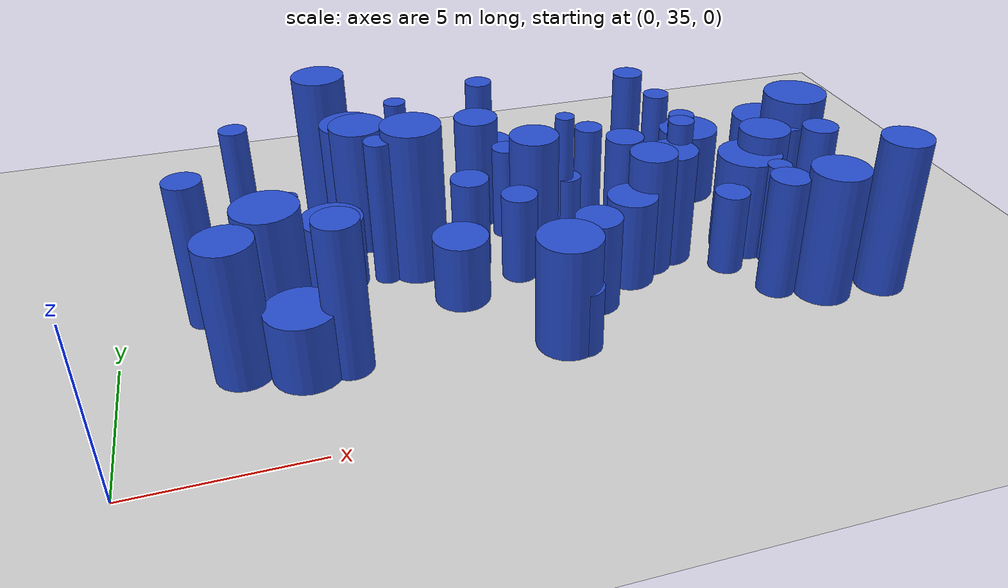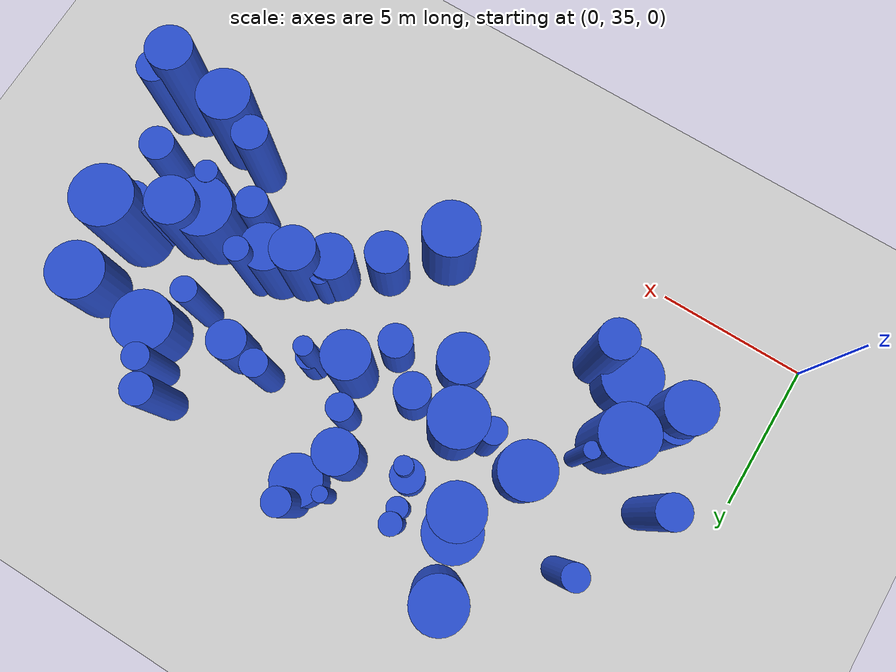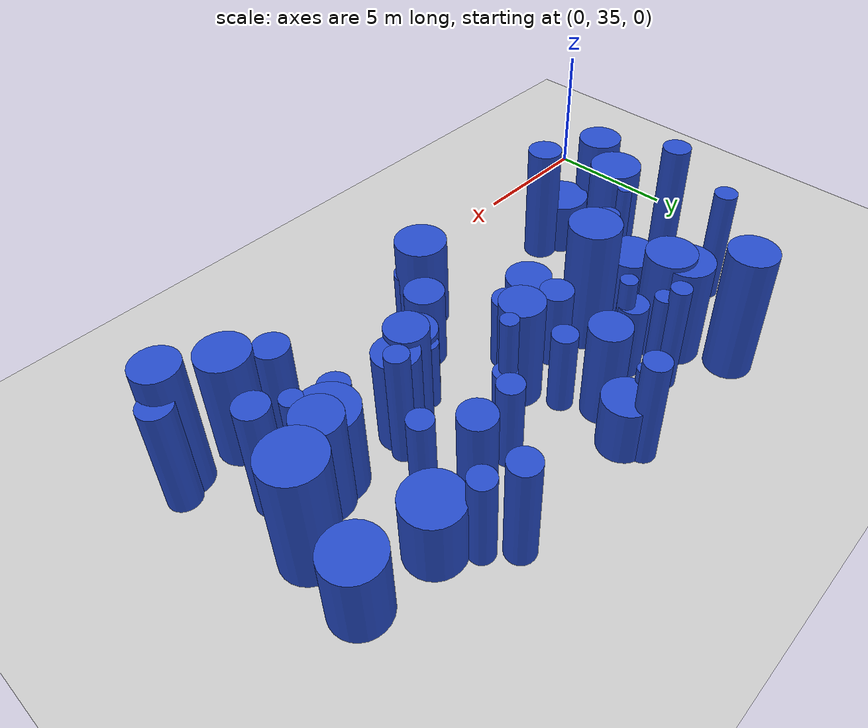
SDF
<sdf version="1.6">
 <world name="default">
  <model name="ground_plane">
   <static>1</static>
   <link name="link">
    <collision name="collision">
     <geometry><plane><normal>0 0 1</normal><size>100 100</size></plane></geometry>
     <surface><friction><ode><mu>100</mu><mu2>50</mu2></ode></friction></surface>
    </collision>
    <visual name="visual">
     <cast_shadows>0</cast_shadows>
     <geometry><plane><normal>0 0 1</normal><size>100 100</size></plane></geometry>
     <material>
      <script><uri>file://media/materials/scripts/gazebo.material</uri><name>Gazebo/Grey</name></script>
     </material>
    </visual>
   </link>
  </model>
  <model name="3">
   <static>0</static>
   <link name="link">
    <inertial>
     <mass>2</mass>
     <inertia><ixx>1.27106</ixx><ixy>0</ixy><ixz>0</ixz><iyy>1.27106</iyy><iyz>0</iyz><izz>0.895913</izz></inertia>
    </inertial>
    <collision name="collision">
     <geometry><cylinder><length>2.2223</length><radius>0.946527</radius></cylinder></geometry>
     <surface><contact><collide_without_contact>1</collide_without_contact></contact></surface>
    </collision>
    <visual name="visual">
     <geometry><cylinder><length>2.2223</length><radius>0.946527</radius></cylinder></geometry>
     <material>
      <script><uri>file://media/materials/scripts/gazebo.material</uri><name>Gazebo/Blue</name></script>
     </material>
    </visual>
    <gravity>0</gravity>
   </link>
   <pose>6.2225 42.677 1.11115 0 -0 0</pose>
  </model>
  <model name="13">
   <static>0</static>
   <link name="link">
    <inertial>
     <mass>2</mass>
     <inertia><ixx>1.65318</ixx><ixy>0</ixy><ixz>0</ixz><iyy>1.65318</iyy><iyz>0</iyz><izz>0.578017</izz></inertia>
    </inertial>
    <collision name="collision">
     <geometry><cylinder><length>2.86095</length><radius>0.760275</radius></cylinder></geometry>
     <surface><contact><collide_without_contact>1</collide_without_contact></contact></surface>
    </collision>
    <visual name="visual">
     <geometry><cylinder><length>2.86095</length><radius>0.760275</radius></cylinder></geometry>
     <material>
      <script><uri>file://media/materials/scripts/gazebo.material</uri><name>Gazebo/Blue</name></script>
     </material>
    </visual>
    <gravity>0</gravity>
   </link>
   <pose>14.8082 40.254 1.43047 0 -0 0</pose>
  </model>
  <model name="49">
   <static>0</static>
   <link name="link">
    <inertial>
     <mass>2</mass>
     <inertia><ixx>2.53938</ixx><ixy>0</ixy><ixz>0</ixz><iyy>2.53938</iyy><iyz>0</iyz><izz>0.580052</izz></inertia>
    </inertial>
    <collision name="collision">
     <geometry><cylinder><length>3.67371</length><radius>0.761611</radius></cylinder></geometry>
     <surface><contact><collide_without_contact>1</collide_without_contact></contact></surface>
    </collision>
    <visual name="visual">
     <geometry><cylinder><length>3.67371</length><radius>0.761611</radius></cylinder></geometry>
     <material>
      <script><uri>file://media/materials/scripts/gazebo.material</uri><name>Gazebo/Blue</name></script>
     </material>
    </visual>
    <gravity>0</gravity>
   </link>
   <pose>16.4595 41.1875 1.83685 0 -0 0</pose>
  </model>
  <model name="63">
   <static>0</static>
   <link name="link">
    <inertial>
     <mass>2</mass>
     <inertia><ixx>3.63749</ixx><ixy>0</ixy><ixz>0</ixz><iyy>3.63749</iyy><iyz>0</iyz><izz>0.165125</izz></inertia>
    </inertial>
    <collision name="collision">
     <geometry><cylinder><length>4.61839</length><radius>0.406356</radius></cylinder></geometry>
     <surface><contact><collide_without_contact>1</collide_without_contact></contact></surface>
    </collision>
    <visual name="visual">
     <geometry><cylinder><length>4.61839</length><radius>0.406356</radius></cylinder></geometry>
     <material>
      <script><uri>file://media/materials/scripts/gazebo.material</uri><name>Gazebo/Blue</name></script>
     </material>
    </visual>
    <gravity>0</gravity>
   </link>
   <pose>7.74254 42.4668 2.3092 0 -0 0</pose>
  </model>
  <model name="65">
   <static>0</static>
   <link name="link">
    <inertial>
     <mass>2</mass>
     <inertia><ixx>2.6533</ixx><ixy>0</ixy><ixz>0</ixz><iyy>2.6533</iyy><iyz>0</iyz><izz>0.0866099</izz></inertia>
    </inertial>
    <collision name="collision">
     <geometry><cylinder><length>3.95727</length><radius>0.294296</radius></cylinder></geometry>
     <surface><contact><collide_without_contact>1</collide_without_contact></contact></surface>
    </collision>
    <visual name="visual">
     <geometry><cylinder><length>3.95727</length><radius>0.294296</radius></cylinder></geometry>
     <material>
      <script><uri>file://media/materials/scripts/gazebo.material</uri><name>Gazebo/Blue</name></script>
     </material>
    </visual>
    <gravity>0</gravity>
   </link>
   <pose>9.41371 44.5715 1.97863 0 -0 0</pose>
  </model>
  <model name="69">
   <static>0</static>
   <link name="link">
    <inertial>
     <mass>2</mass>
     <inertia><ixx>4.29036</ixx><ixy>0</ixy><ixz>0</ixz><iyy>4.29036</iyy><iyz>0</iyz><izz>0.556457</izz></inertia>
    </inertial>
    <collision name="collision">
     <geometry><cylinder><length>4.9064</length><radius>0.74596</radius></cylinder></geometry>
     <surface><contact><collide_without_contact>1</collide_without_contact></contact></surface>
    </collision>
    <visual name="visual">
     <geometry><cylinder><length>4.9064</length><radius>0.74596</radius></cylinder></geometry>
     <material>
      <script><uri>file://media/materials/scripts/gazebo.material</uri><name>Gazebo/Blue</name></script>
     </material>
    </visual>
    <gravity>0</gravity>
   </link>
   <pose>21.9801 37.6707 2.4532 0 -0 0</pose>
  </model>
  <model name="73">
   <static>0</static>
   <link name="link">
    <inertial>
     <mass>2</mass>
     <inertia><ixx>3.46252</ixx><ixy>0</ixy><ixz>0</ixz><iyy>3.46252</iyy><iyz>0</iyz><izz>0.167868</izz></inertia>
    </inertial>
    <collision name="collision">
     <geometry><cylinder><length>4.50239</length><radius>0.409717</radius></cylinder></geometry>
     <surface><contact><collide_without_contact>1</collide_without_contact></contact></surface>
    </collision>
    <visual name="visual">
     <geometry><cylinder><length>4.50239</length><radius>0.409717</radius></cylinder></geometry>
     <material>
      <script><uri>file://media/materials/scripts/gazebo.material</uri><name>Gazebo/Blue</name></script>
     </material>
    </visual>
    <gravity>0</gravity>
   </link>
   <pose>3.82424 44.7196 2.25119 0 -0 0</pose>
  </model>
  <model name="81">
   <static>0</static>
   <link name="link">
    <inertial>
     <mass>2</mass>
     <inertia><ixx>3.20515</ixx><ixy>0</ixy><ixz>0</ixz><iyy>3.20515</iyy><iyz>0</iyz><izz>0.736814</izz></inertia>
    </inertial>
    <collision name="collision">
     <geometry><cylinder><length>4.12559</length><radius>0.858379</radius></cylinder></geometry>
     <surface><contact><collide_without_contact>1</collide_without_contact></contact></surface>
    </collision>
    <visual name="visual">
     <geometry><cylinder><length>4.12559</length><radius>0.858379</radius></cylinder></geometry>
     <material>
      <script><uri>file://media/materials/scripts/gazebo.material</uri><name>Gazebo/Blue</name></script>
     </material>
    </visual>
    <gravity>0</gravity>
   </link>
   <pose>20.1003 37.8413 2.06279 0 -0 0</pose>
  </model>
  <model name="103">
   <static>0</static>
   <link name="link">
    <inertial>
     <mass>2</mass>
     <inertia><ixx>1.67193</ixx><ixy>0</ixy><ixz>0</ixz><iyy>1.67193</iyy><iyz>0</iyz><izz>0.920377</izz></inertia>
    </inertial>
    <collision name="collision">
     <geometry><cylinder><length>2.69637</length><radius>0.959363</radius></cylinder></geometry>
     <surface><contact><collide_without_contact>1</collide_without_contact></contact></surface>
    </collision>
    <visual name="visual">
     <geometry><cylinder><length>2.69637</length><radius>0.959363</radius></cylinder></geometry>
     <material>
      <script><uri>file://media/materials/scripts/gazebo.material</uri><name>Gazebo/Blue</name></script>
     </material>
    </visual>
    <gravity>0</gravity>
   </link>
   <pose>21.392 44.72 1.34819 0 -0 0</pose>
  </model>
  <model name="112">
   <static>0</static>
   <link name="link">
    <inertial>
     <mass>2</mass>
     <inertia><ixx>2.52955</ixx><ixy>0</ixy><ixz>0</ixz><iyy>2.52955</iyy><iyz>0</iyz><izz>0.495649</izz></inertia>
    </inertial>
    <collision name="collision">
     <geometry><cylinder><length>3.70005</length><radius>0.704024</radius></cylinder></geometry>
     <surface><contact><collide_without_contact>1</collide_without_contact></contact></surface>
    </collision>
    <visual name="visual">
     <geometry><cylinder><length>3.70005</length><radius>0.704024</radius></cylinder></geometry>
     <material>
      <script><uri>file://media/materials/scripts/gazebo.material</uri><name>Gazebo/Blue</name></script>
     </material>
    </visual>
    <gravity>0</gravity>
   </link>
   <pose>11.3212 45.2536 1.85003 0 -0 0</pose>
  </model>
  <model name="115">
   <static>0</static>
   <link name="link">
    <inertial>
     <mass>2</mass>
     <inertia>
      <ixx>2.45331</ixx>
      <ixy>0</ixy>
      <ixz>0</ixz>
      <iyy>2.45331</iyy>
      <iyz>0</iyz>
      <izz>0.0722573</izz>
     </inertia>
    </inertial>
    <collision name="collision">
     <geometry><cylinder><length>3.8083</length><radius>0.268807</radius></cylinder></geometry>
     <surface><contact><collide_without_contact>1</collide_without_contact></contact></surface>
    </collision>
    <visual name="visual">
     <geometry><cylinder><length>3.8083</length><radius>0.268807</radius></cylinder></geometry>
     <material>
      <script><uri>file://media/materials/scripts/gazebo.material</uri><name>Gazebo/Blue</name></script>
     </material>
    </visual>
    <gravity>0</gravity>
   </link>
   <pose>5.03865 41.3757 1.90415 0 -0 0</pose>
  </model>
  <model name="134">
   <static>0</static>
   <link name="link">
    <inertial>
     <mass>2</mass>
     <inertia><ixx>1.28456</ixx><ixy>0</ixy><ixz>0</ixz><iyy>1.28456</iyy><iyz>0</iyz><izz>0.284508</izz></inertia>
    </inertial>
    <collision name="collision">
     <geometry><cylinder><length>2.61799</length><radius>0.533393</radius></cylinder></geometry>
     <surface><contact><collide_without_contact>1</collide_without_contact></contact></surface>
    </collision>
    <visual name="visual">
     <geometry><cylinder><length>2.61799</length><radius>0.533393</radius></cylinder></geometry>
     <material>
      <script><uri>file://media/materials/scripts/gazebo.material</uri><name>Gazebo/Blue</name></script>
     </material>
    </visual>
    <gravity>0</gravity>
   </link>
   <pose>17.9562 39.9915 1.30899 0 -0 0</pose>
  </model>
  <model name="139">
   <static>0</static>
   <link name="link">
    <inertial>
     <mass>2</mass>
     <inertia><ixx>3.22486</ixx><ixy>0</ixy><ixz>0</ixz><iyy>3.22486</iyy><iyz>0</iyz><izz>0.874221</izz></inertia>
    </inertial>
    <collision name="collision">
     <geometry><cylinder><length>4.0898</length><radius>0.934998</radius></cylinder></geometry>
     <surface><contact><collide_without_contact>1</collide_without_contact></contact></surface>
    </collision>
    <visual name="visual">
     <geometry><cylinder><length>4.0898</length><radius>0.934998</radius></cylinder></geometry>
     <material>
      <script><uri>file://media/materials/scripts/gazebo.material</uri><name>Gazebo/Blue</name></script>
     </material>
    </visual>
    <gravity>0</gravity>
   </link>
   <pose>4.3738 40.4624 2.0449 0 -0 0</pose>
  </model>
  <model name="148">
   <static>0</static>
   <link name="link">
    <inertial>
     <mass>2</mass>
     <inertia><ixx>2.40063</ixx><ixy>0</ixy><ixz>0</ixz><iyy>2.40063</iyy><iyz>0</iyz><izz>0.848115</izz></inertia>
    </inertial>
    <collision name="collision">
     <geometry><cylinder><length>3.44375</length><radius>0.920932</radius></cylinder></geometry>
     <surface><contact><collide_without_contact>1</collide_without_contact></contact></surface>
    </collision>
    <visual name="visual">
     <geometry><cylinder><length>3.44375</length><radius>0.920932</radius></cylinder></geometry>
     <material>
      <script><uri>file://media/materials/scripts/gazebo.material</uri><name>Gazebo/Blue</name></script>
     </material>
    </visual>
    <gravity>0</gravity>
   </link>
   <pose>11.9658 37.6897 1.72188 0 -0 0</pose>
  </model>
  <model name="150">
   <static>0</static>
   <link name="link">
    <inertial>
     <mass>2</mass>
     <inertia><ixx>2.57688</ixx><ixy>0</ixy><ixz>0</ixz><iyy>2.57688</iyy><iyz>0</iyz><izz>0.341913</izz></inertia>
    </inertial>
    <collision name="collision">
     <geometry><cylinder><length>3.79941</length><radius>0.584733</radius></cylinder></geometry>
     <surface><contact><collide_without_contact>1</collide_without_contact></contact></surface>
    </collision>
    <visual name="visual">
     <geometry><cylinder><length>3.79941</length><radius>0.584733</radius></cylinder></geometry>
     <material>
      <script><uri>file://media/materials/scripts/gazebo.material</uri><name>Gazebo/Blue</name></script>
     </material>
    </visual>
    <gravity>0</gravity>
   </link>
   <pose>18.838 38.3785 1.89971 0 -0 0</pose>
  </model>
  <model name="159">
   <static>0</static>
   <link name="link">
    <inertial>
     <mass>2</mass>
     <inertia><ixx>1.5537</ixx><ixy>0</ixy><ixz>0</ixz><iyy>1.5537</iyy><iyz>0</iyz><izz>0.403807</izz></inertia>
    </inertial>
    <collision name="collision">
     <geometry><cylinder><length>2.84794</length><radius>0.635458</radius></cylinder></geometry>
     <surface><contact><collide_without_contact>1</collide_without_contact></contact></surface>
    </collision>
    <visual name="visual">
     <geometry><cylinder><length>2.84794</length><radius>0.635458</radius></cylinder></geometry>
     <material>
      <script><uri>file://media/materials/scripts/gazebo.material</uri><name>Gazebo/Blue</name></script>
     </material>
    </visual>
    <gravity>0</gravity>
   </link>
   <pose>16.0865 44.1131 1.42397 0 -0 0</pose>
  </model>
  <model name="178">
   <static>0</static>
   <link name="link">
    <inertial>
     <mass>2</mass>
     <inertia><ixx>1.10158</ixx><ixy>0</ixy><ixz>0</ixz><iyy>1.10158</iyy><iyz>0</iyz><izz>0.694112</izz></inertia>
    </inertial>
    <collision name="collision">
     <geometry><cylinder><length>2.12771</length><radius>0.833134</radius></cylinder></geometry>
     <surface><contact><collide_without_contact>1</collide_without_contact></contact></surface>
    </collision>
    <visual name="visual">
     <geometry><cylinder><length>2.12771</length><radius>0.833134</radius></cylinder></geometry>
     <material>
      <script><uri>file://media/materials/scripts/gazebo.material</uri><name>Gazebo/Blue</name></script>
     </material>
    </visual>
    <gravity>0</gravity>
   </link>
   <pose>12.0633 46.5837 1.06386 0 -0 0</pose>
  </model>
  <model name="202">
   <static>0</static>
   <link name="link">
    <inertial>
     <mass>2</mass>
     <inertia><ixx>2.22614</ixx><ixy>0</ixy><ixz>0</ixz><iyy>2.22614</iyy><iyz>0</iyz><izz>0.110093</izz></inertia>
    </inertial>
    <collision name="collision">
     <geometry><cylinder><length>3.60923</length><radius>0.331803</radius></cylinder></geometry>
     <surface><contact><collide_without_contact>1</collide_without_contact></contact></surface>
    </collision>
    <visual name="visual">
     <geometry><cylinder><length>3.60923</length><radius>0.331803</radius></cylinder></geometry>
     <material>
      <script><uri>file://media/materials/scripts/gazebo.material</uri><name>Gazebo/Blue</name></script>
     </material>
    </visual>
    <gravity>0</gravity>
   </link>
   <pose>8.9616 45.6701 1.80462 0 -0 0</pose>
  </model>
  <model name="205">
   <static>0</static>
   <link name="link">
    <inertial>
     <mass>2</mass>
     <inertia><ixx>1.67336</ixx><ixy>0</ixy><ixz>0</ixz><iyy>1.67336</iyy><iyz>0</iyz><izz>0.194667</izz></inertia>
    </inertial>
    <collision name="collision">
     <geometry><cylinder><length>3.07508</length><radius>0.441211</radius></cylinder></geometry>
     <surface><contact><collide_without_contact>1</collide_without_contact></contact></surface>
    </collision>
    <visual name="visual">
     <geometry><cylinder><length>3.07508</length><radius>0.441211</radius></cylinder></geometry>
     <material>
      <script><uri>file://media/materials/scripts/gazebo.material</uri><name>Gazebo/Blue</name></script>
     </material>
    </visual>
    <gravity>0</gravity>
   </link>
   <pose>11.9862 44.0638 1.53754 0 -0 0</pose>
  </model>
  <model name="208">
   <static>0</static>
   <link name="link">
    <inertial>
     <mass>2</mass>
     <inertia>
      <ixx>1.19227</ixx>
      <ixy>0</ixy>
      <ixz>0</ixz>
      <iyy>1.19227</iyy>
      <iyz>0</iyz>
      <izz>0.0647269</izz>
     </inertia>
    </inertial>
    <collision name="collision">
     <geometry><cylinder><length>2.63807</length><radius>0.254415</radius></cylinder></geometry>
     <surface><contact><collide_without_contact>1</collide_without_contact></contact></surface>
    </collision>
    <visual name="visual">
     <geometry><cylinder><length>2.63807</length><radius>0.254415</radius></cylinder></geometry>
     <material>
      <script><uri>file://media/materials/scripts/gazebo.material</uri><name>Gazebo/Blue</name></script>
     </material>
    </visual>
    <gravity>0</gravity>
   </link>
   <pose>11.167 46.5347 1.31904 0 -0 0</pose>
  </model>
  <model name="214">
   <static>0</static>
   <link name="link">
    <inertial>
     <mass>2</mass>
     <inertia><ixx>2.98357</ixx><ixy>0</ixy><ixz>0</ixz><iyy>2.98357</iyy><iyz>0</iyz><izz>0.80653</izz></inertia>
    </inertial>
    <collision name="collision">
     <geometry><cylinder><length>3.9347</length><radius>0.89807</radius></cylinder></geometry>
     <surface><contact><collide_without_contact>1</collide_without_contact></contact></surface>
    </collision>
    <visual name="visual">
     <geometry><cylinder><length>3.9347</length><radius>0.89807</radius></cylinder></geometry>
     <material>
      <script><uri>file://media/materials/scripts/gazebo.material</uri><name>Gazebo/Blue</name></script>
     </material>
    </visual>
    <gravity>0</gravity>
   </link>
   <pose>7.26378 45.442 1.96735 0 -0 0</pose>
  </model>
  <model name="215">
   <static>0</static>
   <link name="link">
    <inertial>
     <mass>2</mass>
     <inertia><ixx>3.75699</ixx><ixy>0</ixy><ixz>0</ixz><iyy>3.75699</iyy><iyz>0</iyz><izz>0.388409</izz></inertia>
    </inertial>
    <collision name="collision">
     <geometry><cylinder><length>4.6235</length><radius>0.623225</radius></cylinder></geometry>
     <surface><contact><collide_without_contact>1</collide_without_contact></contact></surface>
    </collision>
    <visual name="visual">
     <geometry><cylinder><length>4.6235</length><radius>0.623225</radius></cylinder></geometry>
     <material>
      <script><uri>file://media/materials/scripts/gazebo.material</uri><name>Gazebo/Blue</name></script>
     </material>
    </visual>
    <gravity>0</gravity>
   </link>
   <pose>6.01073 38.3552 2.31175 0 -0 0</pose>
  </model>
  <model name="222">
   <static>0</static>
   <link name="link">
    <inertial>
     <mass>2</mass>
     <inertia><ixx>2.31859</ixx><ixy>0</ixy><ixz>0</ixz><iyy>2.31859</iyy><iyz>0</iyz><izz>0.314104</izz></inertia>
    </inertial>
    <collision name="collision">
     <geometry><cylinder><length>3.60128</length><radius>0.56045</radius></cylinder></geometry>
     <surface><contact><collide_without_contact>1</collide_without_contact></contact></surface>
    </collision>
    <visual name="visual">
     <geometry><cylinder><length>3.60128</length><radius>0.56045</radius></cylinder></geometry>
     <material>
      <script><uri>file://media/materials/scripts/gazebo.material</uri><name>Gazebo/Blue</name></script>
     </material>
    </visual>
    <gravity>0</gravity>
   </link>
   <pose>20.78 41.979 1.80064 0 -0 0</pose>
  </model>
  <model name="231">
   <static>0</static>
   <link name="link">
    <inertial>
     <mass>2</mass>
     <inertia><ixx>3.18371</ixx><ixy>0</ixy><ixz>0</ixz><iyy>3.18371</iyy><iyz>0</iyz><izz>0.757303</izz></inertia>
    </inertial>
    <collision name="collision">
     <geometry><cylinder><length>4.10248</length><radius>0.870232</radius></cylinder></geometry>
     <surface><contact><collide_without_contact>1</collide_without_contact></contact></surface>
    </collision>
    <visual name="visual">
     <geometry><cylinder><length>4.10248</length><radius>0.870232</radius></cylinder></geometry>
     <material>
      <script><uri>file://media/materials/scripts/gazebo.material</uri><name>Gazebo/Blue</name></script>
     </material>
    </visual>
    <gravity>0</gravity>
   </link>
   <pose>7.46222 44.8882 2.05124 0 -0 0</pose>
  </model>
  <model name="232">
   <static>0</static>
   <link name="link">
    <inertial>
     <mass>2</mass>
     <inertia><ixx>2.75627</ixx><ixy>0</ixy><ixz>0</ixz><iyy>2.75627</iyy><iyz>0</iyz><izz>0.631356</izz></inertia>
    </inertial>
    <collision name="collision">
     <geometry><cylinder><length>3.82669</length><radius>0.794579</radius></cylinder></geometry>
     <surface><contact><collide_without_contact>1</collide_without_contact></contact></surface>
    </collision>
    <visual name="visual">
     <geometry><cylinder><length>3.82669</length><radius>0.794579</radius></cylinder></geometry>
     <material>
      <script><uri>file://media/materials/scripts/gazebo.material</uri><name>Gazebo/Blue</name></script>
     </material>
    </visual>
    <gravity>0</gravity>
   </link>
   <pose>19.6793 41.4712 1.91335 0 -0 0</pose>
  </model>
  <model name="233">
   <static>0</static>
   <link name="link">
    <inertial>
     <mass>2</mass>
     <inertia><ixx>1.67126</ixx><ixy>0</ixy><ixz>0</ixz><iyy>1.67126</iyy><iyz>0</iyz><izz>0.480397</izz></inertia>
    </inertial>
    <collision name="collision">
     <geometry><cylinder><length>2.93025</length><radius>0.693107</radius></cylinder></geometry>
     <surface><contact><collide_without_contact>1</collide_without_contact></contact></surface>
    </collision>
    <visual name="visual">
     <geometry><cylinder><length>2.93025</length><radius>0.693107</radius></cylinder></geometry>
     <material>
      <script><uri>file://media/materials/scripts/gazebo.material</uri><name>Gazebo/Blue</name></script>
     </material>
    </visual>
    <gravity>0</gravity>
   </link>
   <pose>13.3705 39.2449 1.46513 0 -0 0</pose>
  </model>
  <model name="239">
   <static>0</static>
   <link name="link">
    <inertial>
     <mass>2</mass>
     <inertia><ixx>3.76016</ixx><ixy>0</ixy><ixz>0</ixz><iyy>3.76016</iyy><iyz>0</iyz><izz>0.986349</izz></inertia>
    </inertial>
    <collision name="collision">
     <geometry><cylinder><length>4.42741</length><radius>0.993151</radius></cylinder></geometry>
     <surface><contact><collide_without_contact>1</collide_without_contact></contact></surface>
    </collision>
    <visual name="visual">
     <geometry><cylinder><length>4.42741</length><radius>0.993151</radius></cylinder></geometry>
     <material>
      <script><uri>file://media/materials/scripts/gazebo.material</uri><name>Gazebo/Blue</name></script>
     </material>
    </visual>
    <gravity>0</gravity>
   </link>
   <pose>21.2295 42.4938 2.2137 0 -0 0</pose>
  </model>
  <model name="240">
   <static>0</static>
   <link name="link">
    <inertial>
     <mass>2</mass>
     <inertia><ixx>3.19472</ixx><ixy>0</ixy><ixz>0</ixz><iyy>3.19472</iyy><iyz>0</iyz><izz>0.646059</izz></inertia>
    </inertial>
    <collision name="collision">
     <geometry><cylinder><length>4.15092</length><radius>0.803778</radius></cylinder></geometry>
     <surface><contact><collide_without_contact>1</collide_without_contact></contact></surface>
    </collision>
    <visual name="visual">
     <geometry><cylinder><length>4.15092</length><radius>0.803778</radius></cylinder></geometry>
     <material>
      <script><uri>file://media/materials/scripts/gazebo.material</uri><name>Gazebo/Blue</name></script>
     </material>
    </visual>
    <gravity>0</gravity>
   </link>
   <pose>3.24465 38.9089 2.07546 0 -0 0</pose>
  </model>
  <model name="245">
   <static>0</static>
   <link name="link">
    <inertial>
     <mass>2</mass>
     <inertia><ixx>1.23648</ixx><ixy>0</ixy><ixz>0</ixz><iyy>1.23648</iyy><iyz>0</iyz><izz>0.124269</izz></inertia>
    </inertial>
    <collision name="collision">
     <geometry><cylinder><length>2.65444</length><radius>0.352518</radius></cylinder></geometry>
     <surface><contact><collide_without_contact>1</collide_without_contact></contact></surface>
    </collision>
    <visual name="visual">
     <geometry><cylinder><length>2.65444</length><radius>0.352518</radius></cylinder></geometry>
     <material>
      <script><uri>file://media/materials/scripts/gazebo.material</uri><name>Gazebo/Blue</name></script>
     </material>
    </visual>
    <gravity>0</gravity>
   </link>
   <pose>14.8283 40.848 1.32722 0 -0 0</pose>
  </model>
  <model name="273">
   <static>0</static>
   <link name="link">
    <inertial>
     <mass>2</mass>
     <inertia><ixx>1.55356</ixx><ixy>0</ixy><ixz>0</ixz><iyy>1.55356</iyy><iyz>0</iyz><izz>0.287998</izz></inertia>
    </inertial>
    <collision name="collision">
     <geometry><cylinder><length>2.90815</length><radius>0.536654</radius></cylinder></geometry>
     <surface><contact><collide_without_contact>1</collide_without_contact></contact></surface>
    </collision>
    <visual name="visual">
     <geometry><cylinder><length>2.90815</length><radius>0.536654</radius></cylinder></geometry>
     <material>
      <script><uri>file://media/materials/scripts/gazebo.material</uri><name>Gazebo/Blue</name></script>
     </material>
    </visual>
    <gravity>0</gravity>
   </link>
   <pose>9.22031 44.7309 1.45408 0 -0 0</pose>
  </model>
  <model name="275">
   <static>0</static>
   <link name="link">
    <inertial>
     <mass>2</mass>
     <inertia><ixx>2.26424</ixx><ixy>0</ixy><ixz>0</ixz><iyy>2.26424</iyy><iyz>0</iyz><izz>0.991399</izz></inertia>
    </inertial>
    <collision name="collision">
     <geometry><cylinder><length>3.25749</length><radius>0.99569</radius></cylinder></geometry>
     <surface><contact><collide_without_contact>1</collide_without_contact></contact></surface>
    </collision>
    <visual name="visual">
     <geometry><cylinder><length>3.25749</length><radius>0.99569</radius></cylinder></geometry>
     <material>
      <script><uri>file://media/materials/scripts/gazebo.material</uri><name>Gazebo/Blue</name></script>
     </material>
    </visual>
    <gravity>0</gravity>
   </link>
   <pose>19.0071 41.0399 1.62874 0 -0 0</pose>
  </model>
  <model name="284">
   <static>0</static>
   <link name="link">
    <inertial>
     <mass>2</mass>
     <inertia>
      <ixx>0.919902</ixx>
      <ixy>0</ixy>
      <ixz>0</ixz>
      <iyy>0.919902</iyy>
      <iyz>0</iyz>
      <izz>0.150339</izz>
     </inertia>
    </inertial>
    <collision name="collision">
     <geometry><cylinder><length>2.25131</length><radius>0.387736</radius></cylinder></geometry>
     <surface><contact><collide_without_contact>1</collide_without_contact></contact></surface>
    </collision>
    <visual name="visual">
     <geometry><cylinder><length>2.25131</length><radius>0.387736</radius></cylinder></geometry>
     <material>
      <script><uri>file://media/materials/scripts/gazebo.material</uri><name>Gazebo/Blue</name></script>
     </material>
    </visual>
    <gravity>0</gravity>
   </link>
   <pose>19.2681 41.6129 1.12565 0 -0 0</pose>
  </model>
  <model name="285">
   <static>0</static>
   <link name="link">
    <inertial>
     <mass>2</mass>
     <inertia><ixx>1.08936</ixx><ixy>0</ixy><ixz>0</ixz><iyy>1.08936</iyy><iyz>0</iyz><izz>0.695516</izz></inertia>
    </inertial>
    <collision name="collision">
     <geometry><cylinder><length>2.10941</length><radius>0.833976</radius></cylinder></geometry>
     <surface><contact><collide_without_contact>1</collide_without_contact></contact></surface>
    </collision>
    <visual name="visual">
     <geometry><cylinder><length>2.10941</length><radius>0.833976</radius></cylinder></geometry>
     <material>
      <script><uri>file://media/materials/scripts/gazebo.material</uri><name>Gazebo/Blue</name></script>
     </material>
    </visual>
    <gravity>0</gravity>
   </link>
   <pose>9.67572 40.7254 1.05471 0 -0 0</pose>
  </model>
  <model name="289">
   <static>0</static>
   <link name="link">
    <inertial>
     <mass>2</mass>
     <inertia>
      <ixx>0.893594</ixx>
      <ixy>0</ixy>
      <ixz>0</ixz>
      <iyy>0.893594</iyy>
      <iyz>0</iyz>
      <izz>0.17042</izz>
     </inertia>
    </inertial>
    <collision name="collision">
     <geometry><cylinder><length>2.20234</length><radius>0.41282</radius></cylinder></geometry>
     <surface><contact><collide_without_contact>1</collide_without_contact></contact></surface>
    </collision>
    <visual name="visual">
     <geometry><cylinder><length>2.20234</length><radius>0.41282</radius></cylinder></geometry>
     <material>
      <script><uri>file://media/materials/scripts/gazebo.material</uri><name>Gazebo/Blue</name></script>
     </material>
    </visual>
    <gravity>0</gravity>
   </link>
   <pose>13.7971 43.1949 1.10117 0 -0 0</pose>
  </model>
  <model name="290">
   <static>0</static>
   <link name="link">
    <inertial>
     <mass>2</mass>
     <inertia><ixx>3.18904</ixx><ixy>0</ixy><ixz>0</ixz><iyy>3.18904</iyy><iyz>0</iyz><izz>0.15419</izz></inertia>
    </inertial>
    <collision name="collision">
     <geometry><cylinder><length>4.32107</length><radius>0.392671</radius></cylinder></geometry>
     <surface><contact><collide_without_contact>1</collide_without_contact></contact></surface>
    </collision>
    <visual name="visual">
     <geometry><cylinder><length>4.32107</length><radius>0.392671</radius></cylinder></geometry>
     <material>
      <script><uri>file://media/materials/scripts/gazebo.material</uri><name>Gazebo/Blue</name></script>
     </material>
    </visual>
    <gravity>0</gravity>
   </link>
   <pose>16.929 41.7733 2.16054 0 -0 0</pose>
  </model>
  <model name="292">
   <static>0</static>
   <link name="link">
    <inertial>
     <mass>2</mass>
     <inertia><ixx>1.21983</ixx><ixy>0</ixy><ixz>0</ixz><iyy>1.21983</iyy><iyz>0</iyz><izz>0.999564</izz></inertia>
    </inertial>
    <collision name="collision">
     <geometry><cylinder><length>2.07854</length><radius>0.999782</radius></cylinder></geometry>
     <surface><contact><collide_without_contact>1</collide_without_contact></contact></surface>
    </collision>
    <visual name="visual">
     <geometry><cylinder><length>2.07854</length><radius>0.999782</radius></cylinder></geometry>
     <material>
      <script><uri>file://media/materials/scripts/gazebo.material</uri><name>Gazebo/Blue</name></script>
     </material>
    </visual>
    <gravity>0</gravity>
   </link>
   <pose>4.88186 38.4675 1.03927 0 -0 0</pose>
  </model>
  <model name="312">
   <static>0</static>
   <link name="link">
    <inertial>
     <mass>2</mass>
     <inertia><ixx>4.39479</ixx><ixy>0</ixy><ixz>0</ixz><iyy>4.39479</iyy><iyz>0</iyz><izz>0.810113</izz></inertia>
    </inertial>
    <collision name="collision">
     <geometry><cylinder><length>4.89269</length><radius>0.900063</radius></cylinder></geometry>
     <surface><contact><collide_without_contact>1</collide_without_contact></contact></surface>
    </collision>
    <visual name="visual">
     <geometry><cylinder><length>4.89269</length><radius>0.900063</radius></cylinder></geometry>
     <material>
      <script><uri>file://media/materials/scripts/gazebo.material</uri><name>Gazebo/Blue</name></script>
     </material>
    </visual>
    <gravity>0</gravity>
   </link>
   <pose>8.75944 42.674 2.44634 0 -0 0</pose>
  </model>
  <model name="313">
   <static>0</static>
   <link name="link">
    <inertial>
     <mass>2</mass>
     <inertia><ixx>1.8931</ixx><ixy>0</ixy><ixz>0</ixz><iyy>1.8931</iyy><iyz>0</iyz><izz>0.198985</izz></inertia>
    </inertial>
    <collision name="collision">
     <geometry><cylinder><length>3.2805</length><radius>0.446077</radius></cylinder></geometry>
     <surface><contact><collide_without_contact>1</collide_without_contact></contact></surface>
    </collision>
    <visual name="visual">
     <geometry><cylinder><length>3.2805</length><radius>0.446077</radius></cylinder></geometry>
     <material>
      <script><uri>file://media/materials/scripts/gazebo.material</uri><name>Gazebo/Blue</name></script>
     </material>
    </visual>
    <gravity>0</gravity>
   </link>
   <pose>14.8655 44.3001 1.64025 0 -0 0</pose>
  </model>
  <model name="320">
   <static>0</static>
   <link name="link">
    <inertial>
     <mass>2</mass>
     <inertia><ixx>2.9556</ixx><ixy>0</ixy><ixz>0</ixz><iyy>2.9556</iyy><iyz>0</iyz><izz>0.120656</izz></inertia>
    </inertial>
    <collision name="collision">
     <geometry><cylinder><length>4.16793</length><radius>0.347355</radius></cylinder></geometry>
     <surface><contact><collide_without_contact>1</collide_without_contact></contact></surface>
    </collision>
    <visual name="visual">
     <geometry><cylinder><length>4.16793</length><radius>0.347355</radius></cylinder></geometry>
     <material>
      <script><uri>file://media/materials/scripts/gazebo.material</uri><name>Gazebo/Blue</name></script>
     </material>
    </visual>
    <gravity>0</gravity>
   </link>
   <pose>8.87588 46.1385 2.08396 0 -0 0</pose>
  </model>
  <model name="346">
   <static>0</static>
   <link name="link">
    <inertial>
     <mass>2</mass>
     <inertia><ixx>2.77223</ixx><ixy>0</ixy><ixz>0</ixz><iyy>2.77223</iyy><iyz>0</iyz><izz>0.520943</izz></inertia>
    </inertial>
    <collision name="collision">
     <geometry><cylinder><length>3.88208</length><radius>0.721764</radius></cylinder></geometry>
     <surface><contact><collide_without_contact>1</collide_without_contact></contact></surface>
    </collision>
    <visual name="visual">
     <geometry><cylinder><length>3.88208</length><radius>0.721764</radius></cylinder></geometry>
     <material>
      <script><uri>file://media/materials/scripts/gazebo.material</uri><name>Gazebo/Blue</name></script>
     </material>
    </visual>
    <gravity>0</gravity>
   </link>
   <pose>15.6556 40.8159 1.94104 0 -0 0</pose>
  </model>
  <model name="347">
   <static>0</static>
   <link name="link">
    <inertial>
     <mass>2</mass>
     <inertia>
      <ixx>0.827972</ixx>
      <ixy>0</ixy>
      <ixz>0</ixz>
      <iyy>0.827972</iyy>
      <iyz>0</iyz>
      <izz>0.319074</izz>
     </inertia>
    </inertial>
    <collision name="collision">
     <geometry><cylinder><length>2.00265</length><radius>0.564866</radius></cylinder></geometry>
     <surface><contact><collide_without_contact>1</collide_without_contact></contact></surface>
    </collision>
    <visual name="visual">
     <geometry><cylinder><length>2.00265</length><radius>0.564866</radius></cylinder></geometry>
     <material>
      <script><uri>file://media/materials/scripts/gazebo.material</uri><name>Gazebo/Blue</name></script>
     </material>
    </visual>
    <gravity>0</gravity>
   </link>
   <pose>12.2888 37.3806 1.00133 0 -0 0</pose>
  </model>
  <model name="366">
   <static>0</static>
   <link name="link">
    <inertial>
     <mass>2</mass>
     <inertia><ixx>2.96868</ixx><ixy>0</ixy><ixz>0</ixz><iyy>2.96868</iyy><iyz>0</iyz><izz>0.58115</izz></inertia>
    </inertial>
    <collision name="collision">
     <geometry><cylinder><length>4.00857</length><radius>0.762332</radius></cylinder></geometry>
     <surface><contact><collide_without_contact>1</collide_without_contact></contact></surface>
    </collision>
    <visual name="visual">
     <geometry><cylinder><length>4.00857</length><radius>0.762332</radius></cylinder></geometry>
     <material>
      <script><uri>file://media/materials/scripts/gazebo.material</uri><name>Gazebo/Blue</name></script>
     </material>
    </visual>
    <gravity>0</gravity>
   </link>
   <pose>12.5262 42.7432 2.00429 0 -0 0</pose>
  </model>
  <model name="376">
   <static>0</static>
   <link name="link">
    <inertial>
     <mass>2</mass>
     <inertia><ixx>2.30748</ixx><ixy>0</ixy><ixz>0</ixz><iyy>2.30748</iyy><iyz>0</iyz><izz>0.172596</izz></inertia>
    </inertial>
    <collision name="collision">
     <geometry><cylinder><length>3.65063</length><radius>0.415447</radius></cylinder></geometry>
     <surface><contact><collide_without_contact>1</collide_without_contact></contact></surface>
    </collision>
    <visual name="visual">
     <geometry><cylinder><length>3.65063</length><radius>0.415447</radius></cylinder></geometry>
     <material>
      <script><uri>file://media/materials/scripts/gazebo.material</uri><name>Gazebo/Blue</name></script>
     </material>
    </visual>
    <gravity>0</gravity>
   </link>
   <pose>17.7887 43.5415 1.82532 0 -0 0</pose>
  </model>
  <model name="382">
   <static>0</static>
   <link name="link">
    <inertial>
     <mass>2</mass>
     <inertia><ixx>3.18396</ixx><ixy>0</ixy><ixz>0</ixz><iyy>3.18396</iyy><iyz>0</iyz><izz>0.294632</izz></inertia>
    </inertial>
    <collision name="collision">
     <geometry><cylinder><length>4.26847</length><radius>0.5428</radius></cylinder></geometry>
     <surface><contact><collide_without_contact>1</collide_without_contact></contact></surface>
    </collision>
    <visual name="visual">
     <geometry><cylinder><length>4.26847</length><radius>0.5428</radius></cylinder></geometry>
     <material>
      <script><uri>file://media/materials/scripts/gazebo.material</uri><name>Gazebo/Blue</name></script>
     </material>
    </visual>
    <gravity>0</gravity>
   </link>
   <pose>20.8446 40.2548 2.13424 0 -0 0</pose>
  </model>
  <model name="398">
   <static>0</static>
   <link name="link">
    <inertial>
     <mass>2</mass>
     <inertia><ixx>2.75498</ixx><ixy>0</ixy><ixz>0</ixz><iyy>2.75498</iyy><iyz>0</iyz><izz>0.256921</izz></inertia>
    </inertial>
    <collision name="collision">
     <geometry><cylinder><length>3.96977</length><radius>0.506874</radius></cylinder></geometry>
     <surface><contact><collide_without_contact>1</collide_without_contact></contact></surface>
    </collision>
    <visual name="visual">
     <geometry><cylinder><length>3.96977</length><radius>0.506874</radius></cylinder></geometry>
     <material>
      <script><uri>file://media/materials/scripts/gazebo.material</uri><name>Gazebo/Blue</name></script>
     </material>
    </visual>
    <gravity>0</gravity>
   </link>
   <pose>17.1632 46.7225 1.98489 0 -0 0</pose>
  </model>
  <model name="406">
   <static>0</static>
   <link name="link">
    <inertial>
     <mass>2</mass>
     <inertia><ixx>2.01362</ixx><ixy>0</ixy><ixz>0</ixz><iyy>2.01362</iyy><iyz>0</iyz><izz>0.189722</izz></inertia>
    </inertial>
    <collision name="collision">
     <geometry><cylinder><length>3.39301</length><radius>0.435571</radius></cylinder></geometry>
     <surface><contact><collide_without_contact>1</collide_without_contact></contact></surface>
    </collision>
    <visual name="visual">
     <geometry><cylinder><length>3.39301</length><radius>0.435571</radius></cylinder></geometry>
     <material>
      <script><uri>file://media/materials/scripts/gazebo.material</uri><name>Gazebo/Blue</name></script>
     </material>
    </visual>
    <gravity>0</gravity>
   </link>
   <pose>17.944 45.9587 1.69651 0 -0 0</pose>
  </model>
  <model name="417">
   <static>0</static>
   <link name="link">
    <inertial>
     <mass>2</mass>
     <inertia><ixx>1.4515</ixx><ixy>0</ixy><ixz>0</ixz><iyy>1.4515</iyy><iyz>0</iyz><izz>0.301741</izz></inertia>
    </inertial>
    <collision name="collision">
     <geometry><cylinder><length>2.79353</length><radius>0.54931</radius></cylinder></geometry>
     <surface><contact><collide_without_contact>1</collide_without_contact></contact></surface>
    </collision>
    <visual name="visual">
     <geometry><cylinder><length>2.79353</length><radius>0.54931</radius></cylinder></geometry>
     <material>
      <script><uri>file://media/materials/scripts/gazebo.material</uri><name>Gazebo/Blue</name></script>
     </material>
    </visual>
    <gravity>0</gravity>
   </link>
   <pose>11.6678 41.4483 1.39676 0 -0 0</pose>
  </model>
  <model name="427">
   <static>0</static>
   <link name="link">
    <inertial>
     <mass>2</mass>
     <inertia><ixx>2.82327</ixx><ixy>0</ixy><ixz>0</ixz><iyy>2.82327</iyy><iyz>0</iyz><izz>0.198707</izz></inertia>
    </inertial>
    <collision name="collision">
     <geometry><cylinder><length>4.04271</length><radius>0.445765</radius></cylinder></geometry>
     <surface><contact><collide_without_contact>1</collide_without_contact></contact></surface>
    </collision>
    <visual name="visual">
     <geometry><cylinder><length>4.04271</length><radius>0.445765</radius></cylinder></geometry>
     <material>
      <script><uri>file://media/materials/scripts/gazebo.material</uri><name>Gazebo/Blue</name></script>
     </material>
    </visual>
    <gravity>0</gravity>
   </link>
   <pose>11.9389 47.294 2.02136 0 -0 0</pose>
  </model>
  <model name="428">
   <static>0</static>
   <link name="link">
    <inertial>
     <mass>2</mass>
     <inertia><ixx>3.52422</ixx><ixy>0</ixy><ixz>0</ixz><iyy>3.52422</iyy><iyz>0</iyz><izz>0.289124</izz></inertia>
    </inertial>
    <collision name="collision">
     <geometry><cylinder><length>4.50311</length><radius>0.537702</radius></cylinder></geometry>
     <surface><contact><collide_without_contact>1</collide_without_contact></contact></surface>
    </collision>
    <visual name="visual">
     <geometry><cylinder><length>4.50311</length><radius>0.537702</radius></cylinder></geometry>
     <material>
      <script><uri>file://media/materials/scripts/gazebo.material</uri><name>Gazebo/Blue</name></script>
     </material>
    </visual>
    <gravity>0</gravity>
   </link>
   <pose>2.36133 41.7959 2.25155 0 -0 0</pose>
  </model>
  <model name="440">
   <static>0</static>
   <link name="link">
    <inertial>
     <mass>2</mass>
     <inertia><ixx>4.3587</ixx><ixy>0</ixy><ixz>0</ixz><iyy>4.3587</iyy><iyz>0</iyz><izz>0.697072</izz></inertia>
    </inertial>
    <collision name="collision">
     <geometry><cylinder><length>4.9052</length><radius>0.834908</radius></cylinder></geometry>
     <surface><contact><collide_without_contact>1</collide_without_contact></contact></surface>
    </collision>
    <visual name="visual">
     <geometry><cylinder><length>4.9052</length><radius>0.834908</radius></cylinder></geometry>
     <material>
      <script><uri>file://media/materials/scripts/gazebo.material</uri><name>Gazebo/Blue</name></script>
     </material>
    </visual>
    <gravity>0</gravity>
   </link>
   <pose>6.63404 47.2454 2.4526 0 -0 0</pose>
  </model>
  <model name="452">
   <static>0</static>
   <link name="link">
    <inertial>
     <mass>2</mass>
     <inertia><ixx>1.64912</ixx><ixy>0</ixy><ixz>0</ixz><iyy>1.64912</iyy><iyz>0</iyz><izz>0.34235</izz></inertia>
    </inertial>
    <collision name="collision">
     <geometry><cylinder><length>2.97786</length><radius>0.585107</radius></cylinder></geometry>
     <surface><contact><collide_without_contact>1</collide_without_contact></contact></surface>
    </collision>
    <visual name="visual">
     <geometry><cylinder><length>2.97786</length><radius>0.585107</radius></cylinder></geometry>
     <material>
      <script><uri>file://media/materials/scripts/gazebo.material</uri><name>Gazebo/Blue</name></script>
     </material>
    </visual>
    <gravity>0</gravity>
   </link>
   <pose>10.4167 42.508 1.48893 0 -0 0</pose>
  </model>
  <model name="454">
   <static>0</static>
   <link name="link">
    <inertial>
     <mass>2</mass>
     <inertia>
      <ixx>3.11728</ixx>
      <ixy>0</ixy>
      <ixz>0</ixz>
      <iyy>3.11728</iyy>
      <iyz>0</iyz>
      <izz>0.0921905</izz>
     </inertia>
    </inertial>
    <collision name="collision">
     <geometry><cylinder><length>4.29268</length><radius>0.303629</radius></cylinder></geometry>
     <surface><contact><collide_without_contact>1</collide_without_contact></contact></surface>
    </collision>
    <visual name="visual">
     <geometry><cylinder><length>4.29268</length><radius>0.303629</radius></cylinder></geometry>
     <material>
      <script><uri>file://media/materials/scripts/gazebo.material</uri><name>Gazebo/Blue</name></script>
     </material>
    </visual>
    <gravity>0</gravity>
   </link>
   <pose>13.657 43.186 2.14634 0 -0 0</pose>
  </model>
  <model name="470">
   <static>0</static>
   <link name="link">
    <inertial>
     <mass>2</mass>
     <inertia><ixx>1.49012</ixx><ixy>0</ixy><ixz>0</ixz><iyy>1.49012</iyy><iyz>0</iyz><izz>0.994328</izz></inertia>
    </inertial>
    <collision name="collision">
     <geometry><cylinder><length>2.44085</length><radius>0.99716</radius></cylinder></geometry>
     <surface><contact><collide_without_contact>1</collide_without_contact></contact></surface>
    </collision>
    <visual name="visual">
     <geometry><cylinder><length>2.44085</length><radius>0.99716</radius></cylinder></geometry>
     <material>
      <script><uri>file://media/materials/scripts/gazebo.material</uri><name>Gazebo/Blue</name></script>
     </material>
    </visual>
    <gravity>0</gravity>
   </link>
   <pose>18.7824 44.9512 1.22042 0 -0 0</pose>
  </model>
  <model name="471">
   <static>0</static>
   <link name="link">
    <inertial>
     <mass>2</mass>
     <inertia><ixx>1.80903</ixx><ixy>0</ixy><ixz>0</ixz><iyy>1.80903</iyy><iyz>0</iyz><izz>0.355588</izz></inertia>
    </inertial>
    <collision name="collision">
     <geometry><cylinder><length>3.12849</length><radius>0.596312</radius></cylinder></geometry>
     <surface><contact><collide_without_contact>1</collide_without_contact></contact></surface>
    </collision>
    <visual name="visual">
     <geometry><cylinder><length>3.12849</length><radius>0.596312</radius></cylinder></geometry>
     <material>
      <script><uri>file://media/materials/scripts/gazebo.material</uri><name>Gazebo/Blue</name></script>
     </material>
    </visual>
    <gravity>0</gravity>
   </link>
   <pose>3.17025 39.3164 1.56424 0 -0 0</pose>
  </model>
  <model name="481">
   <static>0</static>
   <link name="link">
    <inertial>
     <mass>2</mass>
     <inertia><ixx>2.8814</ixx><ixy>0</ixy><ixz>0</ixz><iyy>2.8814</iyy><iyz>0</iyz><izz>0.294533</izz></inertia>
    </inertial>
    <collision name="collision">
     <geometry><cylinder><length>4.05029</length><radius>0.542709</radius></cylinder></geometry>
     <surface><contact><collide_without_contact>1</collide_without_contact></contact></surface>
    </collision>
    <visual name="visual">
     <geometry><cylinder><length>4.05029</length><radius>0.542709</radius></cylinder></geometry>
     <material>
      <script><uri>file://media/materials/scripts/gazebo.material</uri><name>Gazebo/Blue</name></script>
     </material>
    </visual>
    <gravity>0</gravity>
   </link>
   <pose>22.5117 38.1595 2.02514 0 -0 0</pose>
  </model>
  <model name="486">
   <static>0</static>
   <link name="link">
    <inertial>
     <mass>2</mass>
     <inertia><ixx>1.86619</ixx><ixy>0</ixy><ixz>0</ixz><iyy>1.86619</iyy><iyz>0</iyz><izz>0.138049</izz></inertia>
    </inertial>
    <collision name="collision">
     <geometry><cylinder><length>3.28375</length><radius>0.371549</radius></cylinder></geometry>
     <surface><contact><collide_without_contact>1</collide_without_contact></contact></surface>
    </collision>
    <visual name="visual">
     <geometry><cylinder><length>3.28375</length><radius>0.371549</radius></cylinder></geometry>
     <material>
      <script><uri>file://media/materials/scripts/gazebo.material</uri><name>Gazebo/Blue</name></script>
     </material>
    </visual>
    <gravity>0</gravity>
   </link>
   <pose>19.4789 40.0209 1.64187 0 -0 0</pose>
  </model>
 </world>
</sdf>
